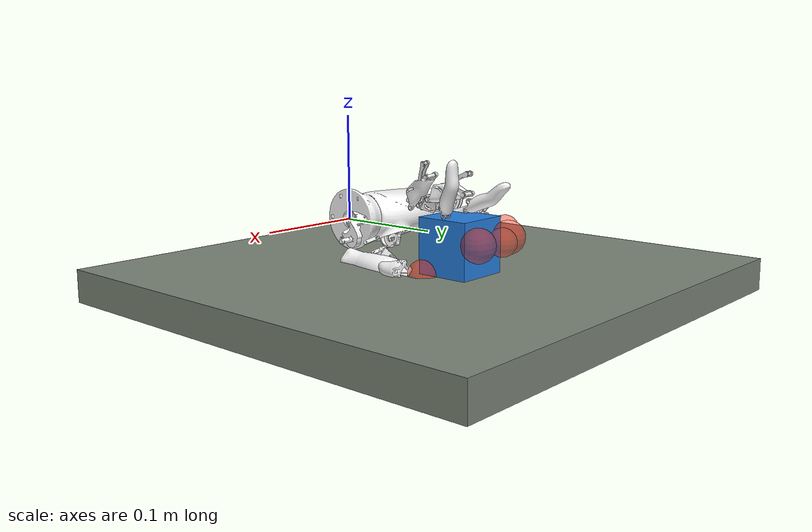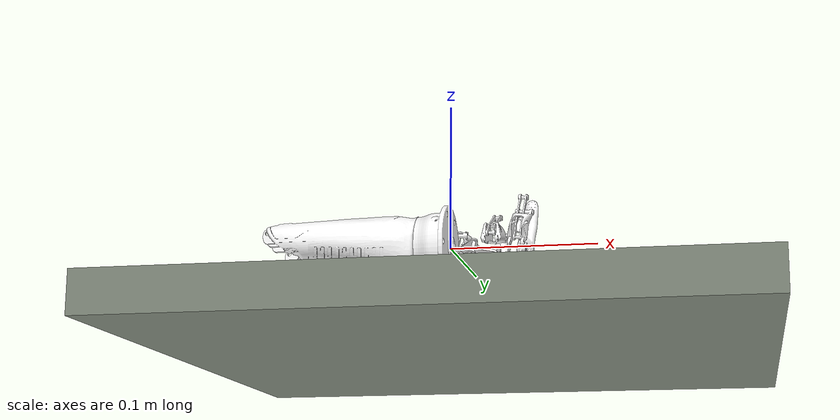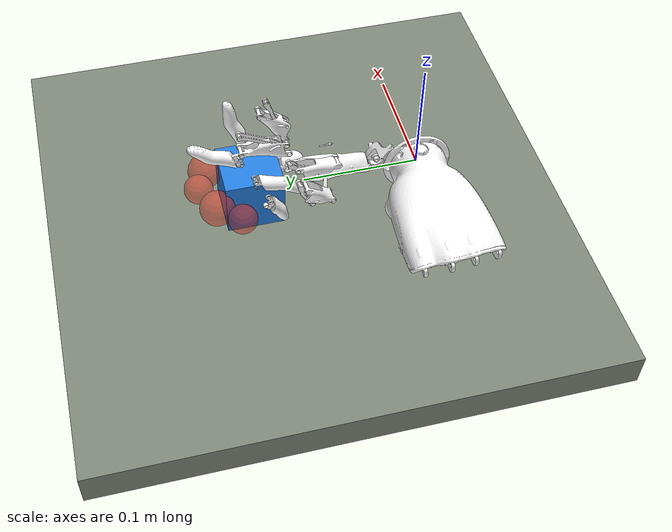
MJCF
<?xml version='1.0' encoding='utf-8'?>
<mujoco model="ap001_left_manual_grasp_scene">
  <compiler angle="radian" autolimits="true" />
  <option timestep="0.002" gravity="0 0 -9.81" integrator="implicitfast" iterations="100" ls_iterations="50" />
  <statistic center="0 0.1 0.03" extent="0.35" />
  <visual>
    <quality shadowsize="2048" />
    <headlight diffuse="0.7 0.7 0.7" ambient="0.25 0.25 0.25" specular="0.2 0.2 0.2" />
    <map znear="0.01" />
  </visual>
  <asset>
    <mesh name="base_link" file="../AP001/assets/meshes_l/base_link.STL" />
    <mesh name="if_proximal_link" file="../AP001/assets/meshes_l/if_proximal_link.STL" />
    <mesh name="if_distal_link" file="../AP001/assets/meshes_l/if_distal_link.STL" />
    <mesh name="if_connecting_link" file="../AP001/assets/meshes_l/if_connecting_link.STL" />
    <mesh name="mf_proximal_link" file="../AP001/assets/meshes_l/mf_proximal_link.STL" />
    <mesh name="mf_distal_link" file="../AP001/assets/meshes_l/mf_distal_link.STL" />
    <mesh name="mf_connecting_link" file="../AP001/assets/meshes_l/mf_connecting_link.STL" />
    <mesh name="rf_proximal_link" file="../AP001/assets/meshes_l/rf_proximal_link.STL" />
    <mesh name="rf_distal_link" file="../AP001/assets/meshes_l/rf_distal_link.STL" />
    <mesh name="rf_connecting_link" file="../AP001/assets/meshes_l/rf_connecting_link.STL" />
    <mesh name="lf_proximal_link" file="../AP001/assets/meshes_l/lf_proximal_link.STL" />
    <mesh name="lf_distal_link" file="../AP001/assets/meshes_l/lf_distal_link.STL" />
    <mesh name="lf_connecting_link" file="../AP001/assets/meshes_l/lf_connecting_link.STL" />
    <mesh name="th_root_link" file="../AP001/assets/meshes_l/th_root_link.STL" />
    <mesh name="th_proximal_link" file="../AP001/assets/meshes_l/th_proximal_link.STL" />
    <mesh name="th_slider_link" file="../AP001/assets/meshes_l/th_slider_link.STL" />
    <mesh name="th_connecting_link" file="../AP001/assets/meshes_l/th_connecting_link.STL" />
    <mesh name="th_distal_link" file="../AP001/assets/meshes_l/th_distal_link.STL" />
    <mesh name="th_slider_connecting_link" file="../AP001/assets/meshes_l/th_slider_connecting_link.STL" />
    <texture name="table_grid" type="2d" builtin="checker" width="256" height="256" rgb1="0.78 0.80 0.76" rgb2="0.58 0.62 0.58" />
    <material name="table_mat" texture="table_grid" texrepeat="5 5" rgba="0.72 0.74 0.70 1" />
    <material name="cube_mat" rgba="0.15 0.50 0.88 1" />
  </asset>
  <worldbody>
    <light name="key_light" pos="-0.35 -0.25 0.6" dir="0.6 0.6 -1" directional="true" />
    <camera name="grasp_view" pos="0.22 -0.24 0.22" xyaxes="0.73 0.68 0 -0.32 0.34 0.88" />
    <geom name="table_top" type="box" pos="0 0.1 -0.045" size="0.22 0.22 0.015" material="table_mat" contype="1" conaffinity="1" condim="4" friction="1.5 0.05 0.005" solimp="0.995 0.999 0.0005" solref="0.004 1" margin="0.0002" gap="0" />
    <body name="grasp_cube" pos="0.01 0.145 -0.005">
      <freejoint name="cube_freejoint" />
      <geom name="grasp_cube_geom" type="box" size="0.025 0.025 0.025" material="cube_mat" mass="0.08" contype="1" conaffinity="1" condim="4" friction="0.8 0.02 0.002" solimp="0.995 0.999 0.0005" solref="0.003 1" margin="0.0002" gap="0" />
    </body>
    <body name="hand_mount" pos="0 0 0">
      <joint name="hand_x" type="slide" axis="1 0 0" damping="1400" armature="1.0" />
      <joint name="hand_y" type="slide" axis="0 1 0" damping="1400" armature="1.0" />
      <joint name="hand_z" type="slide" axis="0 0 1" damping="1400" armature="1.0" />
      <joint name="hand_roll" type="hinge" axis="1 0 0" damping="350" armature="0.35" />
      <joint name="hand_pitch" type="hinge" axis="0 1 0" damping="350" armature="0.35" />
      <joint name="hand_yaw" type="hinge" axis="0 0 1" damping="350" armature="0.35" />
      <body name="base_link" gravcomp="1">
        <geom type="mesh" rgba="1 1 1 1" mesh="base_link" contype="1" conaffinity="1" condim="4" friction="2.5 0.08 0.008" solimp="0.995 0.999 0.0005" solref="0.004 1" margin="0.0002" gap="0" />
      </body>
      <body name="if_proximal_link" pos="0.0215356 0.110229 0.0277474" quat="0.998472 -0.00121866 0.0494591 -0.0246022" gravcomp="1">
        <inertial pos="0.00759963 0.0174149 -0.00283219" quat="0.485891 0.513505 -0.513693 0.48615" mass="0.0293521" diaginertia="2.37494e-07 2.32569e-07 1.02726e-07" />
        <joint name="if_proximal_link" pos="0 0 0" axis="-1 0 0" ref="0.3" damping="0.22" armature="0.0015" />
        <geom type="mesh" rgba="1 1 1 1" mesh="if_proximal_link" contype="1" conaffinity="1" condim="4" friction="2.5 0.08 0.008" solimp="0.995 0.999 0.0005" solref="0.004 1" margin="0.0002" gap="0" />
        <body name="if_distal_link" pos="0 0.0357192 -0.00379239" gravcomp="1">
          <inertial pos="0.00709506 -4.21357e-05 -0.0028895" quat="0 0.707107 0 0.707107" mass="0.0318308" diaginertia="1.56479e-06 1.56373e-06 9.99018e-7" />
          <joint name="if_distal_link" pos="0 0 0" axis="-1 0 0" damping="0.2" armature="0.001" />
          <geom type="mesh" rgba="1 1 1 1" mesh="if_distal_link" contype="1" conaffinity="1" condim="4" friction="2.5 0.08 0.008" solimp="0.995 0.999 0.0005" solref="0.004 1" margin="0.0002" gap="0" />
          <site name="index_tip_touch_site" type="sphere" pos="0.007 0.03482 -0.02152" size="0.015" rgba="1 0.15 0.05 0.45" />
        </body>
      </body>
      <body name="if_connecting_link" pos="0.0251127 0.116346 0.0333594" quat="0.998472 -0.00121866 0.0494591 -0.0246022" gravcomp="1">
        <inertial pos="0.00489999 0.0141485 -0.00931294" quat="0.871381 0.490608 0 0" mass="0.0200341" diaginertia="2.67058e-08 2.63769e-08 3.50323e-10" />
        <joint name="if_connecting_link" pos="0 0 0" axis="-1 0 0" damping="0.2" armature="0.001" />
        <geom type="mesh" rgba="1 1 1 1" mesh="if_connecting_link" contype="1" conaffinity="1" condim="4" friction="2.5 0.08 0.008" solimp="0.995 0.999 0.0005" solref="0.004 1" margin="0.0002" gap="0" />
      </body>
      <body name="mf_proximal_link" pos="0.00144328 0.111668 0.0317646" quat="1 -1.154e-07 -0.000718979 -0.000160505" gravcomp="1">
        <inertial pos="0.00759986 0.0193215 -0.00405752" quat="0.707099 0.707115 0 0" mass="0.0237723" diaginertia="3.62189e-07 3.54265e-07 1.37124e-07" />
        <joint name="mf_proximal_link" pos="0 0 0" axis="-1 0 0" ref="0.3" damping="0.22" armature="0.0015" />
        <geom type="mesh" rgba="1 1 1 1" mesh="mf_proximal_link" contype="1" conaffinity="1" condim="4" friction="2.5 0.08 0.008" solimp="0.995 0.999 0.0005" solref="0.004 1" margin="0.0002" gap="0" />
        <body name="mf_distal_link" pos="0 0.0405988 -0.00577519" gravcomp="1">
          <inertial pos="0.00709507 4.45296e-05 -0.00290427" quat="0 0.707107 0 0.707107" mass="0.03118308" diaginertia="1.56527e-06 1.56324e-06 9.99018e-7" />
          <joint name="mf_distal_link" pos="0 0 0" axis="-1 0 0" damping="0.2" armature="0.001" />
          <geom type="mesh" rgba="1 1 1 1" mesh="mf_distal_link" contype="1" conaffinity="1" condim="4" friction="2.5 0.08 0.008" solimp="0.995 0.999 0.0005" solref="0.004 1" margin="0.0002" gap="0" />
          <site name="middle_tip_touch_site" type="sphere" pos="0.007 0.03726 -0.02346" size="0.0125" rgba="1 0.15 0.05 0.45" />
        </body>
      </body>
      <body name="mf_connecting_link" pos="0.00413676 0.117958 0.0376717" quat="1 -1.154e-07 -0.000718979 -0.000160505" gravcomp="1">
        <inertial pos="0.00489999 0.0164491 -0.0103993" quat="0.864959 0.501842 0 0" mass="0.0215109" diaginertia="3.73208e-08 3.69827e-08 3.6101e-10" />
        <joint name="mf_connecting_link" pos="0 0 0" axis="-1 0 0" damping="0.2" armature="0.001" />
        <geom type="mesh" rgba="1 1 1 1" mesh="mf_connecting_link" contype="1" conaffinity="1" condim="4" friction="2.5 0.08 0.008" solimp="0.995 0.999 0.0005" solref="0.004 1" margin="0.0002" gap="0" />
      </body>
      <body name="rf_proximal_link" pos="-0.0185369 0.108588 0.0302829" quat="0.99939 -0.000281476 -0.00829235 0.0339234" gravcomp="1">
        <inertial pos="0.00759942 0.0173278 -0.00332764" quat="0.493096 0.506465 -0.506756 0.493506" mass="0.0293531" diaginertia="2.37515e-07 2.3259e-07 1.02729e-07" />
        <joint name="rf_proximal_link" pos="0 0 0" axis="-1 0 0" ref="0.3" damping="0.22" armature="0.0015" />
        <geom type="mesh" rgba="1 1 1 1" mesh="rf_proximal_link" contype="1" conaffinity="1" condim="4" friction="2.5 0.08 0.008" solimp="0.995 0.999 0.0005" solref="0.004 1" margin="0.0002" gap="0" />
        <body name="rf_distal_link" pos="0 0.0355965 -0.00480918" gravcomp="1">
          <inertial pos="0.00756929 -0.000209135 -0.00288247" quat="0 0.707107 0 0.707107" mass="0.03118308" diaginertia="1.56479e-06 1.56372e-06 9.99018e-7" />
          <joint name="rf_distal_link" pos="0 0 0" axis="-1 0 0" damping="0.2" armature="0.001" />
          <geom type="mesh" rgba="1 1 1 1" mesh="rf_distal_link" contype="1" conaffinity="1" condim="4" friction="2.5 0.08 0.008" solimp="0.995 0.999 0.0005" solref="0.004 1" margin="0.0002" gap="0" />
          <site name="ring_tip_touch_site" type="sphere" pos="0.007 0.03349 -0.0235" size="0.015" rgba="1 0.15 0.05 0.45" />
        </body>
      </body>
      <body name="rf_connecting_link" pos="-0.0163677 0.115044 0.0362256" quat="0.99939 -0.000281476 -0.00829235 0.0339234" gravcomp="1">
        <inertial pos="0.00489999 0.0138312 -0.00977799" quat="0.879413 0.476059 0 0" mass="0.0200341" diaginertia="2.67058e-08 2.63769e-08 3.50323e-10" />
        <joint name="rf_connecting_link" pos="0 0 0" axis="-1 0 0" damping="0.2" armature="0.001" />
        <geom type="mesh" rgba="1 1 1 1" mesh="rf_connecting_link" contype="1" conaffinity="1" condim="4" friction="2.5 0.08 0.008" solimp="0.995 0.999 0.0005" solref="0.004 1" margin="0.0002" gap="0" />
      </body>
      <body name="lf_proximal_link" pos="-0.0384957 0.104919 0.0261462" quat="0.996858 -0.00313552 -0.0577473 0.0541267" gravcomp="1">
        <inertial pos="0.00760071 0.015675 -0.0029499" quat="0.500638 0.499004 -0.49936 0.500995" mass="0.0277912" diaginertia="1.82316e-07 1.76548e-07 9.42052e-08" />
        <joint name="lf_proximal_link" pos="0 0 0" axis="-1 0 0" ref="0.3" damping="0.22" armature="0.0015" />
        <geom type="mesh" rgba="1 1 1 1" mesh="lf_proximal_link" contype="1" conaffinity="1" condim="4" friction="2.5 0.08 0.008" solimp="0.995 0.999 0.0005" solref="0.004 1" margin="0.0002" gap="0" />
        <body name="lf_distal_link" pos="0 0.0315914 -0.00464655" gravcomp="1">
          <inertial pos="0.00709503 -0.000147589 -0.00285785" quat="-0.150667 0.690869 -0.150667 0.690869" mass="0.03118308" diaginertia="1.56576e-06 1.56276e-06 9.99018e-7" />
          <joint name="lf_distal_link" pos="0 0 0" axis="-1 0 0" damping="0.2" armature="0.001" />
          <geom type="mesh" rgba="1 1 1 1" mesh="lf_distal_link" contype="1" conaffinity="1" condim="4" friction="2.5 0.08 0.008" solimp="0.995 0.999 0.0005" solref="0.004 1" margin="0.0002" gap="0" />
          <site name="little_tip_touch_site" type="sphere" pos="0.007 0.02295 -0.01689" size="0.0125" rgba="1 0.15 0.05 0.45" />
        </body>
      </body>
      <body name="lf_connecting_link" pos="-0.0371888 0.111395 0.0323159" quat="0.996858 -0.00313552 -0.0577473 0.0541267" gravcomp="1">
        <inertial pos="0.00489991 0.0123223 -0.00897716" quat="0.891943 0.452147 0 0" mass="0.02176993" diaginertia="1.94958e-08 1.92587e-08 2.55967e-10" />
        <joint name="lf_connecting_link" pos="0 0 0" axis="-1 0 0" damping="0.2" armature="0.001" />
        <geom type="mesh" rgba="1 1 1 1" mesh="lf_connecting_link" contype="1" conaffinity="1" condim="4" friction="2.5 0.08 0.008" solimp="0.995 0.999 0.0005" solref="0.004 1" margin="0.0002" gap="0" />
      </body>
      <body name="th_root_link" pos="0.019251 0.028856 -0.012557" quat="-3.67321e-06 1 -0.000158505 5.82221e-10" gravcomp="1">
        <inertial pos="0.00299514 -0.0205271 0.00582141" quat="0.74851 0.441785 0.0250246 0.493896" mass="0.0708321" diaginertia="0.000154618 0.000128515 6.37189e-05" />
        <joint name="th_root_link" pos="0 0 0" axis="0 -1 0" ref="0.75" damping="0.22" armature="0.0015" />
        <geom type="mesh" rgba="1 1 1 1" mesh="th_root_link" contype="1" conaffinity="1" condim="4" friction="2.5 0.08 0.008" solimp="0.995 0.999 0.0005" solref="0.004 1" margin="0.0002" gap="0" />
        <body name="th_slider_connecting_link" pos="0.0147446 -0.0365663 0.00667895" quat="4.68762e-05 0.399399 -0.000107535 0.916777" gravcomp="1">
          <inertial pos="0.0079 0.00390438 0.00385953" quat="0.38535 0.922771 0 0" mass="0.886531" diaginertia="1.54015e-09 1.3854e-09 1.64213e-10" />
          <joint name="th_slider_connecting_link" pos="0 0 0" axis="-1 0 0" ref="0.55" damping="0.22" armature="0.0015" />
          <geom type="mesh" rgba="1 1 1 1" mesh="th_slider_connecting_link" contype="1" conaffinity="1" condim="4" friction="2.5 0.08 0.008" solimp="0.995 0.999 0.0005" solref="0.004 1" margin="0.0002" gap="0" />
          <body name="th_slider_link" pos="0 0.0078087 0.0077191" quat="0.707107 -6.94115e-05 -0.707107 6.94115e-05" gravcomp="1">
            <inertial pos="0.00146645 0.0143829 -0.00789993" quat="0.70608 0.70608 -0.038099 -0.038099" mass="0.03164989" diaginertia="1.74468e-07 1.47922e-07 3.02562e-08" />
            <joint name="th_slider_link" pos="0 0 0" axis="0 0 -1" damping="0.2" armature="0.001" />
            <geom type="mesh" rgba="1 1 1 1" mesh="th_slider_link" contype="1" conaffinity="1" condim="4" friction="2.5 0.08 0.008" solimp="0.995 0.999 0.0005" solref="0.004 1" margin="0.0002" gap="0" />
            <body name="th_connecting_link" pos="0.00482734 0.0319803 -0.00329993" quat="0.707105 0.00135448 0.707105 -0.0013545" gravcomp="1">
              <inertial pos="0.00441584 0.00572792 -0.00043772" quat="0.529921 0.468171 -0.468171 0.529921" mass="0.02406527" diaginertia="6.93499e-09 5.13371e-09 3.44337e-09" />
              <joint name="th_connecting_link" pos="0 0 0" axis="-1 0 0" damping="0.2" armature="0.001" />
              <geom type="mesh" rgba="1 1 1 1" mesh="th_connecting_link" contype="1" conaffinity="1" condim="4" friction="2.5 0.08 0.008" solimp="0.995 0.999 0.0005" solref="0.004 1" margin="0.0002" gap="0" />
              <body name="th_distal_link" pos="-0.00299999 0.00983198 -0.00115858" gravcomp="1">
                <inertial pos="0.0068168 -0.000637415 -0.011298" quat="0 0.707107 0 0.707107" mass="0.182314" diaginertia="1.23939e-05 1.23781e-05 6.36213e-6" />
                <joint name="th_distal_link" pos="0 0 0" axis="-1 0 0" damping="0.2" armature="0.001" />
                <geom type="mesh" rgba="1 1 1 1" mesh="th_distal_link" contype="1" conaffinity="1" condim="4" friction="2.5 0.08 0.008" solimp="0.995 0.999 0.0005" solref="0.004 1" margin="0.0002" gap="0" />
                <site name="thumb_tip_touch_site" type="sphere" pos="0.007 0.01042 -0.00172" size="0.0145" rgba="1 0.15 0.05 0.45" />
              </body>
            </body>
            <body name="th_proximal_link" pos="0.000251708 0.00254797 -0.0009" quat="0.625198 0.244895 -0.270279 -0.690003" gravcomp="1">
              <inertial pos="-0.00892032 -0.00704212 -0.00302753" quat="0.193977 0.68015 0.319235 0.63076" mass="0.0544275" diaginertia="2.19932e-04 1.98161e-04 3.24967e-05" />
              <joint name="th_proximal_link" pos="0 0 0" axis="-1 0 0" type="slide" damping="0.3" armature="0.002" />
              <geom type="mesh" rgba="1 1 1 1" mesh="th_proximal_link" contype="1" conaffinity="1" condim="4" friction="2.5 0.08 0.008" solimp="0.995 0.999 0.0005" solref="0.004 1" margin="0.0002" gap="0" />
            </body>
          </body>
        </body>
      </body>
    </body>
  </worldbody>
  <contact>
    <exclude body1="base_link" body2="if_proximal_link" />
    <exclude body1="base_link" body2="if_distal_link" />
    <exclude body1="base_link" body2="if_connecting_link" />
    <exclude body1="if_connecting_link" body2="if_proximal_link" />
    <exclude body1="if_connecting_link" body2="if_distal_link" />
    <exclude body1="if_proximal_link" body2="if_distal_link" />
    <exclude body1="base_link" body2="mf_proximal_link" />
    <exclude body1="base_link" body2="mf_distal_link" />
    <exclude body1="base_link" body2="mf_connecting_link" />
    <exclude body1="mf_connecting_link" body2="mf_proximal_link" />
    <exclude body1="mf_connecting_link" body2="mf_distal_link" />
    <exclude body1="mf_proximal_link" body2="mf_distal_link" />
    <exclude body1="base_link" body2="rf_proximal_link" />
    <exclude body1="base_link" body2="rf_distal_link" />
    <exclude body1="base_link" body2="rf_connecting_link" />
    <exclude body1="rf_connecting_link" body2="rf_proximal_link" />
    <exclude body1="rf_connecting_link" body2="rf_distal_link" />
    <exclude body1="rf_proximal_link" body2="rf_distal_link" />
    <exclude body1="base_link" body2="lf_proximal_link" />
    <exclude body1="base_link" body2="lf_distal_link" />
    <exclude body1="base_link" body2="lf_connecting_link" />
    <exclude body1="lf_connecting_link" body2="lf_proximal_link" />
    <exclude body1="lf_connecting_link" body2="lf_distal_link" />
    <exclude body1="lf_proximal_link" body2="lf_distal_link" />
    <exclude body1="th_root_link" body2="base_link" />
    <exclude body1="th_root_link" body2="th_slider_link" />
    <exclude body1="th_root_link" body2="th_connecting_link" />
    <exclude body1="th_root_link" body2="th_distal_link" />
    <exclude body1="th_root_link" body2="th_slider_link" />
    <exclude body1="th_root_link" body2="th_proximal_link" />
    <exclude body1="th_root_link" body2="th_slider_connecting_link" />
    <exclude body1="th_slider_connecting_link" body2="base_link" />
    <exclude body1="th_slider_connecting_link" body2="th_slider_link" />
    <exclude body1="th_slider_connecting_link" body2="th_connecting_link" />
    <exclude body1="th_slider_connecting_link" body2="th_distal_link" />
    <exclude body1="th_slider_connecting_link" body2="th_proximal_link" />
    <exclude body1="th_slider_link" body2="base_link" />
    <exclude body1="th_slider_link" body2="th_connecting_link" />
    <exclude body1="th_slider_link" body2="th_distal_link" />
    <exclude body1="th_slider_link" body2="th_proximal_link" />
    <exclude body1="th_connecting_link" body2="base_link" />
    <exclude body1="th_connecting_link" body2="th_distal_link" />
    <exclude body1="th_connecting_link" body2="th_proximal_link" />
    <exclude body1="th_distal_link" body2="base_link" />
    <exclude body1="th_distal_link" body2="th_proximal_link" />
    <exclude body1="th_proximal_link" body2="base_link" />
  </contact>
  <equality>
    <connect body1="if_distal_link" body2="if_connecting_link" anchor="0.011 0.001 -0.008" solimp="0.95 0.99 0.001" solref="0.005 1" />
    <connect body1="mf_distal_link" body2="mf_connecting_link" anchor="0.011 0.001 -0.008" solimp="0.95 0.99 0.001" solref="0.005 1" />
    <connect body1="rf_distal_link" body2="rf_connecting_link" anchor="0.011 0.001 -0.008" solimp="0.95 0.99 0.001" solref="0.005 1" />
    <connect body1="lf_distal_link" body2="lf_connecting_link" anchor="0.011 0.001 -0.008" solimp="0.99 0.99 0.001" solref="0.001 1" />
    <connect body1="th_proximal_link" body2="th_root_link" anchor="0.018 0.001 0.003" solimp="0.95 0.99 0.001" solref="0.005 1" />
    <connect body1="th_distal_link" body2="th_proximal_link" anchor="-0.001 -0.0015 -0.010" solimp="0.95 0.95 0.001" solref="0.005 1" />
  </equality>
  <actuator>
    <position name="hand_x" joint="hand_x" kp="5000" ctrlrange="-0.50 0.50" ctrllimited="true" />
    <position name="hand_y" joint="hand_y" kp="5000" ctrlrange="-0.40 0.60" ctrllimited="true" />
    <position name="hand_z" joint="hand_z" kp="5000" ctrlrange="-0.20 0.80" ctrllimited="true" />
    <position name="hand_roll" joint="hand_roll" kp="1200" ctrlrange="-0.8 0.8" ctrllimited="true" />
    <position name="hand_pitch" joint="hand_pitch" kp="1200" ctrlrange="-0.8 0.8" ctrllimited="true" />
    <position name="hand_yaw" joint="hand_yaw" kp="1200" ctrlrange="-1.2 1.2" ctrllimited="true" />
    <position name="index_finger" joint="if_proximal_link" kp="35" ctrlrange="0 1.44" ctrllimited="true" />
    <position name="middle_finger" joint="mf_proximal_link" kp="35" ctrlrange="0 1.44" ctrllimited="true" />
    <position name="ring_finger" joint="rf_proximal_link" kp="35" ctrlrange="0 1.44" ctrllimited="true" />
    <position name="little_finger" joint="lf_proximal_link" kp="35" ctrlrange="0 1.44" ctrllimited="true" />
    <position name="thumb_root" joint="th_root_link" kp="30" ctrlrange="0 1.57" ctrllimited="true" />
    <position name="thumb" joint="th_slider_connecting_link" kp="30" ctrlrange="0 0.7" ctrllimited="true" />
  </actuator>
  <sensor>
    <touch name="index_touch" site="index_tip_touch_site" />
    <touch name="middle_touch" site="middle_tip_touch_site" />
    <touch name="ring_touch" site="ring_tip_touch_site" />
    <touch name="little_touch" site="little_tip_touch_site" />
    <touch name="thumb_touch" site="thumb_tip_touch_site" />
  </sensor>
</mujoco>
